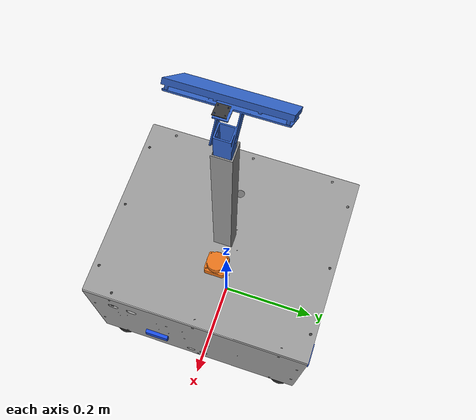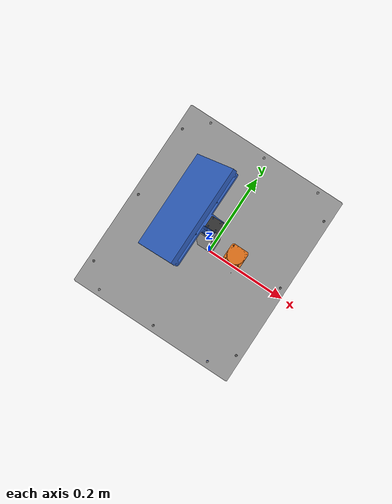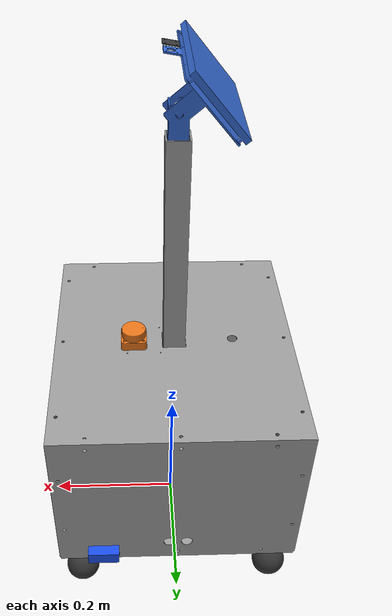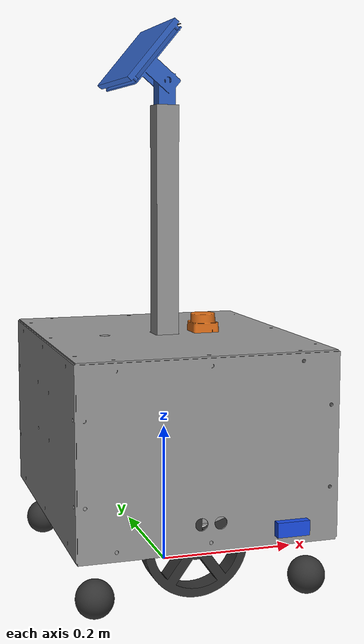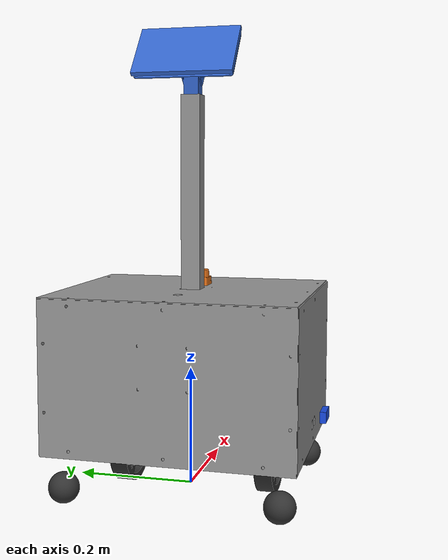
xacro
<?xml version="1.0"?>
<robot xmlns:xacro="http://www.ros.org/wiki/xacro" name="hospital_robot">

  <xacro:include filename="$(find hospital_robot_description)/urdf/inertial_macros.xacro"/>
  <!-- Phase 7: frames of the 3 HC-SR04 ultrasonic sensors (MEASURE them) -->
  <xacro:include filename="$(find hospital_robot_description)/urdf/ultrasonic.xacro"/>

  <xacro:property name="mesh_pkg" value="package://hospital_robot_description/meshes"/>
  <xacro:property name="mesh_scale" value="0.001 0.001 0.001"/>  <!-- mm STL -> m -->

  <!-- Chassis -->
  <xacro:property name="base_length" value="0.354"/>
  <xacro:property name="base_width"  value="0.412"/>
  <xacro:property name="base_height" value="0.305501"/>
  <xacro:property name="base_mass"   value="11.6331"/>

  <!-- VERIFY: vertical distance from the ground up to your Z=0 origin
       plane. See README_NEXT_STEPS.md Part A. -->
  <xacro:property name="origin_ground_clearance" value="0.051"/>

  <!-- Drive wheels -->
  <xacro:property name="wheel_radius"     value="0.072"/>
  <xacro:property name="wheel_width"      value="0.029"/>
  <xacro:property name="wheel_separation" value="0.245"/>
  <xacro:property name="wheel_x"          value="0.176982"/>
  <xacro:property name="wheel_mass"       value="0.34"/>

  <xacro:property name="wheel_left_y"     value="0.3315"/>
  <xacro:property name="wheel_right_y"    value="0.0865"/>

  <!-- Casters — you have FOUR (one per corner), not one. Positions are
       your raw Measurements.md values, used directly. -->
  <xacro:property name="caster_radius" value="0.025"/>
  <xacro:property name="caster_mass"   value="0.1"/>
  <xacro:property name="caster1_x" value="0.0302"/>
  <xacro:property name="caster1_y" value="0.030206"/>
  <xacro:property name="caster2_x" value="0.0302"/>
  <xacro:property name="caster2_y" value="0.381794"/>
  <xacro:property name="caster3_x" value="0.3238"/>
  <xacro:property name="caster3_y" value="0.030206"/>
  <xacro:property name="caster4_x" value="0.3238"/>
  <xacro:property name="caster4_y" value="0.381794"/>

  <!-- LiDAR -->
  <xacro:property name="lidar_x"      value="0.238"/>
  <xacro:property name="lidar_y"      value="0.210"/>
  <xacro:property name="lidar_z"      value="0.299"/>
  <xacro:property name="lidar_yaw"    value="-1.5708"/>
  <xacro:property name="lidar_radius" value="0.038"/>
  <xacro:property name="lidar_height" value="0.04"/>
  <xacro:property name="lidar_mass"   value="0.19"/>       <!-- VERIFY: Parts.md lists 0.042 kg, unusually light for an LD06 -->

  <!-- Lifting column (prismatic) -->
  <xacro:property name="column_x"      value="0.175"/>
  <xacro:property name="column_y"      value="0.206"/>
  <xacro:property name="column_z"      value="0.086971"/>
  <xacro:property name="column_side"   value="0.08"/>
  <xacro:property name="column_length" value="0.677971"/>  <!-- VERIFY: derived, see README Part B -->
  <xacro:property name="column_travel" value="0.300"/>
  <xacro:property name="column_mass"   value="1.5"/>

  <!-- Camera — expressed relative to column_link's own origin (derived
       from your base_link-relative measurement, see README Part B) -->
  <xacro:property name="camera_x"     value="0.011737"/>
  <xacro:property name="camera_y"     value="0.0"/>
  <xacro:property name="camera_z"     value="-0.05"/>
  <xacro:property name="camera_pitch" value="-${10*pi/180}"/>  <!-- 10 deg, from Measurements.md -->
  <xacro:property name="camera_mass"  value="0.05"/>

  <!-- IMU -->
  <xacro:property name="imu_x" value="-0.052"/>
  <xacro:property name="imu_y" value="-0.066"/>
  <xacro:property name="imu_z" value="0.497"/>

  <xacro:property name="base_mesh_rpy"   value="${pi/2} 0 ${pi/2 + pi}"/>
  <xacro:property name="wheel_mesh_rpy"  value="${pi/2} 0 0"/>
  <xacro:property name="lidar_mesh_rpy"  value="${pi/2} 0 0"/>
  <xacro:property name="camera_mesh_rpy" value="0 0 0"/>
  <xacro:property name="column_mesh_rpy" value="${pi/2} 0 ${pi/2 + pi}"/>
  <xacro:property name="caster_mesh_rpy" value="${pi/2} 0 0"/>

  <xacro:property name="base_mesh_xyz"   value="0.005986 0.176 0.030501"/>
  <xacro:property name="lidar_mesh_xyz"  value="-0.0325 0.055177 -0.045470 "/>
  <xacro:property name="camera_mesh_xyz" value="-0.009 -0.01 0.0"/>
  <xacro:property name="column_mesh_xyz" value="0.018221 0.004221 -0.112747"/>

  <!-- Caster is reused 4x, so it needs its own local origin, not a
       single offset — not covered by origin.txt. Leave at 0 0 0 if
       it already looks correct, otherwise fix independently. -->
  <xacro:property name="caster_mesh_xyz" value="0 0 0"/>

  <!-- ================= MATERIALS ================= -->
  <material name="grey">  <color rgba="0.6 0.6 0.6 1.0"/></material>
  <material name="dark">  <color rgba="0.2 0.2 0.2 1.0"/></material>
  <material name="orange"><color rgba="0.9 0.45 0.1 1.0"/></material>
  <material name="blue">  <color rgba="0.2 0.4 0.8 1.0"/></material>

  <!-- ================= BASE FOOTPRINT ================= -->
  <link name="base_footprint"/>

  <joint name="base_joint" type="fixed">
    <parent link="base_footprint"/>
    <child  link="base_link"/>
    <origin xyz="${-wheel_x} ${-(wheel_left_y + wheel_right_y)/2} ${origin_ground_clearance}" rpy="0 0 0"/>
  </joint>

  <!-- ================= CHASSIS ================= -->
  <link name="base_link">
    <visual>
      <origin xyz="${base_mesh_xyz}" rpy="${base_mesh_rpy}"/>
      <geometry>
        <mesh filename="${mesh_pkg}/base_link.stl" scale="${mesh_scale}"/>
      </geometry>
      <material name="grey"/>
    </visual>
    <collision>
      <origin xyz="${base_length/2} ${base_width/2} ${base_height/2}" rpy="0 0 0"/>
      <geometry>
        <box size="${base_length} ${base_width} ${base_height}"/>
      </geometry>
    </collision>
    <xacro:inertial_box mass="${base_mass}" x="${base_length}" y="${base_width}" z="${base_height}">
      <origin xyz="${base_length/2} ${base_width/2} ${base_height/2}" rpy="0 0 0"/>
    </xacro:inertial_box>
  </link>

  <!-- ================= DRIVE WHEELS ================= -->
  <!-- y for each wheel is now an explicit measured value
       (wheel_left_y / wheel_right_y above) instead of a symmetric
       centreline calculation. -->
  <xacro:macro name="drive_wheel" params="prefix wheel_y">
    <joint name="${prefix}_wheel_joint" type="continuous">
      <parent link="base_link"/>
      <child  link="${prefix}_wheel_link"/>
      <origin xyz="${wheel_x} ${wheel_y} ${wheel_radius - origin_ground_clearance}" rpy="0 0 0"/>
      <axis xyz="0 1 0"/>
      <dynamics damping="0.01" friction="0.01"/>
    </joint>

    <link name="${prefix}_wheel_link">
      <visual>
        <origin xyz="0 0 0" rpy="${wheel_mesh_rpy}"/>
        <geometry>
          <mesh filename="${mesh_pkg}/wheel.stl" scale="${mesh_scale}"/>
        </geometry>
        <material name="dark"/>
      </visual>
      <collision>
        <origin xyz="0 0 0" rpy="${pi/2} 0 0"/>
        <geometry>
          <cylinder radius="${wheel_radius}" length="${wheel_width}"/>
        </geometry>
      </collision>
      <xacro:inertial_cylinder mass="${wheel_mass}" length="${wheel_width}" radius="${wheel_radius}">
        <origin xyz="0 0 0" rpy="${pi/2} 0 0"/>
      </xacro:inertial_cylinder>
    </link>
  </xacro:macro>

  <xacro:drive_wheel prefix="left"  wheel_y="${wheel_left_y}"/>
  <xacro:drive_wheel prefix="right" wheel_y="${wheel_right_y}"/>

  <!-- ================= CASTERS (x4) ================= -->
  <xacro:macro name="caster" params="suffix cx cy">
    <joint name="caster${suffix}_joint" type="fixed">
      <parent link="base_link"/>
      <child  link="caster${suffix}_link"/>
      <origin xyz="${cx} ${cy} ${caster_radius - origin_ground_clearance}" rpy="0 0 0"/>
    </joint>

    <link name="caster${suffix}_link">
      <visual>
        <origin xyz="${caster_mesh_xyz}" rpy="${caster_mesh_rpy}"/>
        <geometry>
          <mesh filename="${mesh_pkg}/caster.stl" scale="${mesh_scale}"/>
        </geometry>
        <material name="dark"/>
      </visual>
      <collision>
        <geometry><sphere radius="${caster_radius}"/></geometry>
      </collision>
      <xacro:inertial_sphere mass="${caster_mass}" radius="${caster_radius}">
        <origin xyz="0 0 0" rpy="0 0 0"/>
      </xacro:inertial_sphere>
    </link>
  </xacro:macro>

  <xacro:caster suffix="1" cx="${caster1_x}" cy="${caster1_y}"/>
  <xacro:caster suffix="2" cx="${caster2_x}" cy="${caster2_y}"/>
  <xacro:caster suffix="3" cx="${caster3_x}" cy="${caster3_y}"/>
  <xacro:caster suffix="4" cx="${caster4_x}" cy="${caster4_y}"/>

  <!-- ================= LIDAR ================= -->
  <joint name="lidar_joint" type="fixed">
    <parent link="base_link"/>
    <child  link="lidar_link"/>
    <origin xyz="${lidar_x} ${lidar_y} ${lidar_z}" rpy="0 0 ${lidar_yaw}"/>
  </joint>

  <link name="lidar_link">
    <visual>
      <origin xyz="${lidar_mesh_xyz}" rpy="${lidar_mesh_rpy}"/>
      <geometry>
        <mesh filename="${mesh_pkg}/lidar.stl" scale="${mesh_scale}"/>
      </geometry>
      <material name="orange"/>
    </visual>
    <collision>
      <geometry>
        <cylinder radius="${lidar_radius}" length="${lidar_height}"/>
      </geometry>
    </collision>
    <xacro:inertial_cylinder mass="${lidar_mass}" length="${lidar_height}" radius="${lidar_radius}">
      <origin xyz="0 0 0" rpy="0 0 0"/>
    </xacro:inertial_cylinder>
  </link>

  <!-- ================= LIFTING COLUMN (PRISMATIC) ================= -->
  <joint name="column_joint" type="prismatic">
    <parent link="base_link"/>
    <child  link="column_link"/>
    <origin xyz="${column_x} ${column_y} ${column_z}" rpy="0 0 0"/>
    <axis xyz="0 0 1"/>
    <limit lower="0.0" upper="${column_travel}" effort="200.0" velocity="0.05"/>
    <dynamics damping="10.0" friction="1.0"/>
  </joint>

  <link name="column_link">
    <visual>
      <origin xyz="${column_mesh_xyz}" rpy="${column_mesh_rpy}"/>
      <geometry>
        <mesh filename="${mesh_pkg}/column.stl" scale="${mesh_scale}"/>
      </geometry>
      <material name="blue"/>
    </visual>
    <collision>
      <origin xyz="0 0 ${column_length/2}" rpy="0 0 0"/>
      <geometry>
        <box size="${column_side} ${column_side} ${column_length}"/>
      </geometry>
    </collision>
    <xacro:inertial_box mass="${column_mass}" x="${column_side}" y="${column_side}" z="${column_length}">
      <origin xyz="0 0 ${column_length/2}" rpy="0 0 0"/>
    </xacro:inertial_box>
  </link>

  <!-- ================= CAMERA ================= -->
  <joint name="camera_joint" type="fixed">
    <parent link="column_link"/>
    <child  link="camera_link"/>
    <origin xyz="${camera_x} ${camera_y} ${column_length + camera_z}" rpy="0 ${camera_pitch} 0"/>
  </joint>

  <link name="camera_link">
    <visual>
      <origin xyz="${camera_mesh_xyz}" rpy="${camera_mesh_rpy}"/>
      <geometry>
        <mesh filename="${mesh_pkg}/camera.stl" scale="${mesh_scale}"/>
      </geometry>
      <material name="dark"/>
    </visual>
    <collision>
      <geometry><box size="0.03 0.09 0.025"/></geometry>
    </collision>
    <xacro:inertial_box mass="${camera_mass}" x="0.03" y="0.09" z="0.025">
      <origin xyz="0 0 0" rpy="0 0 0"/>
    </xacro:inertial_box>
  </link>

  <!-- Optical frame: REP-103 says camera optics use Z-forward, X-right,
       Y-down. Vision nodes expect this. Keep it. -->
  <joint name="camera_optical_joint" type="fixed">
    <parent link="camera_link"/>
    <child  link="camera_optical_link"/>
    <origin xyz="0 0 0" rpy="${-pi/2} 0 ${-pi/2}"/>
  </joint>
  <link name="camera_optical_link"/>

  <!-- ================= IMU ================= -->
  <joint name="imu_joint" type="fixed">
    <parent link="column_link"/>
    <child  link="imu_link"/>
    <origin xyz="${imu_x} ${imu_y} ${imu_z}" rpy="0 0 0"/>
  </joint>
  <link name="imu_link"/>

  <ros2_control name="GazeboSystem" type="system">
    <hardware>
      <plugin>gz_ros2_control/GazeboSimSystem</plugin>
    </hardware>
    <joint name="left_wheel_joint">
      <command_interface name="velocity"/>
      <state_interface name="velocity"/>
      <state_interface name="position"/>
    </joint>
    <joint name="right_wheel_joint">
      <command_interface name="velocity"/>
      <state_interface name="velocity"/>
      <state_interface name="position"/>
    </joint>
    <joint name="column_joint">
      <command_interface name="position"/>
      <state_interface name="position"/>
      <state_interface name="velocity"/>
    </joint>
  </ros2_control>

  <gazebo>
    <plugin filename="gz_ros2_control-system" name="gz_ros2_control::GazeboSimROS2ControlPlugin">
      <parameters>/home/john-wright/robot_ws/sim_config/controllers.yaml</parameters>
      <hold_joints>false</hold_joints>
    </plugin>
  </gazebo>

  <gazebo reference="left_wheel_link">
    <mu1>1.0</mu1>
    <mu2>1.0</mu2>
  </gazebo>
  <gazebo reference="right_wheel_link">
    <mu1>1.0</mu1>
    <mu2>1.0</mu2>
  </gazebo>
  <gazebo reference="caster1_link"><mu1>0.0</mu1><mu2>0.0</mu2></gazebo>
  <gazebo reference="caster2_link"><mu1>0.0</mu1><mu2>0.0</mu2></gazebo>
  <gazebo reference="caster3_link"><mu1>0.0</mu1><mu2>0.0</mu2></gazebo>
  <gazebo reference="caster4_link"><mu1>0.0</mu1><mu2>0.0</mu2></gazebo>

  <gazebo reference="lidar_link">
    <sensor name="lidar" type="gpu_lidar">
      <pose>0 0 0 0 0 0</pose>
      <topic>scan</topic>
      <gz_frame_id>lidar_link</gz_frame_id>
      <update_rate>10</update_rate>
      <lidar>
        <scan>
          <horizontal>
            <samples>360</samples>
            <min_angle>-3.14159</min_angle>
            <max_angle>3.14159</max_angle>
          </horizontal>
        </scan>
        <range>
          <min>0.1</min>
          <max>12.0</max>
        </range>
      </lidar>
      <always_on>true</always_on>
      <visualize>true</visualize>
    </sensor>
  </gazebo>

  <gazebo reference="imu_link">
    <sensor name="imu" type="imu">
      <topic>imu</topic>
      <update_rate>100</update_rate>
      <always_on>true</always_on>
    </sensor>
  </gazebo>

  <gazebo reference="camera_link">
    <sensor name="camera" type="camera">
      <pose>0 0 0 0 0 0</pose>
      <topic>camera/image_raw</topic>
      <update_rate>15</update_rate>
      <camera>
        <horizontal_fov>1.047</horizontal_fov>
        <image>
          <width>640</width>
          <height>480</height>
          <format>R8G8B8</format>
        </image>
        <clip>
          <near>0.05</near>
          <far>10.0</far>
        </clip>
      </camera>
      <always_on>true</always_on>
      <visualize>true</visualize>
    </sensor>
  </gazebo>

</robot>

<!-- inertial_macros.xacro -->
<robot xmlns:xacro="http://www.ros.org/wiki/xacro">

  <!-- Solid box, centred on the link origin -->
  <xacro:macro name="inertial_box" params="mass x y z *origin">
    <inertial>
      <xacro:insert_block name="origin"/>
      <mass value="${mass}"/>
      <inertia ixx="${(mass/12.0)*(y*y+z*z)}" ixy="0.0" ixz="0.0"
               iyy="${(mass/12.0)*(x*x+z*z)}" iyz="0.0"
               izz="${(mass/12.0)*(x*x+y*y)}"/>
    </inertial>
  </xacro:macro>

  <!-- Solid cylinder, axis along local Z -->
  <xacro:macro name="inertial_cylinder" params="mass length radius *origin">
    <inertial>
      <xacro:insert_block name="origin"/>
      <mass value="${mass}"/>
      <inertia ixx="${(mass/12.0)*(3*radius*radius+length*length)}" ixy="0.0" ixz="0.0"
               iyy="${(mass/12.0)*(3*radius*radius+length*length)}" iyz="0.0"
               izz="${(mass/2.0)*(radius*radius)}"/>
    </inertial>
  </xacro:macro>

  <!-- Solid sphere -->
  <xacro:macro name="inertial_sphere" params="mass radius *origin">
    <inertial>
      <xacro:insert_block name="origin"/>
      <mass value="${mass}"/>
      <inertia ixx="${(2.0/5.0)*mass*radius*radius}" ixy="0.0" ixz="0.0"
               iyy="${(2.0/5.0)*mass*radius*radius}" iyz="0.0"
               izz="${(2.0/5.0)*mass*radius*radius}"/>
    </inertial>
  </xacro:macro>

</robot>

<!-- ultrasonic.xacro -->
<robot xmlns:xacro="http://www.ros.org/wiki/xacro">

  <xacro:property name="us_left_x"    value="0.11"/>
  <xacro:property name="us_left_y"    value="0.22"/>
  <xacro:property name="us_left_z"    value="0.105"/>
  <xacro:property name="us_left_yaw"  value="1.5708"/>

  <xacro:property name="us_front_x"   value="0.184"/>
  <xacro:property name="us_front_y"   value="-0.084"/>
  <xacro:property name="us_front_z"   value="0.165"/>
  <xacro:property name="us_front_yaw" value="0.0"/>

  <xacro:property name="us_right_x"   value="0.11"/>
  <xacro:property name="us_right_y"   value="-0.22"/>
  <xacro:property name="us_right_z"   value="0.105"/>
  <xacro:property name="us_right_yaw" value="-1.5708"/>

  <xacro:macro name="hc_sr04" params="name x y z yaw">
    <joint name="${name}_joint" type="fixed">
      <parent link="base_footprint"/>
      <child  link="${name}_link"/>
      <origin xyz="${x} ${y} ${z}" rpy="0 0 ${yaw}"/>
    </joint>
    <link name="${name}_link">
      <visual>
        <origin xyz="-0.008 0 0" rpy="0 ${pi/2} 0"/>
        <geometry><box size="0.02 0.045 0.016"/></geometry>
        <material name="us_blue"><color rgba="0.1 0.3 0.9 1.0"/></material>
      </visual>
    </link>
  </xacro:macro>

  <xacro:hc_sr04 name="us_left"  x="${us_left_x}"  y="${us_left_y}"  z="${us_left_z}"  yaw="${us_left_yaw}"/>
  <xacro:hc_sr04 name="us_front" x="${us_front_x}" y="${us_front_y}" z="${us_front_z}" yaw="${us_front_yaw}"/>
  <xacro:hc_sr04 name="us_right" x="${us_right_x}" y="${us_right_y}" z="${us_right_z}" yaw="${us_right_yaw}"/>

</robot>
